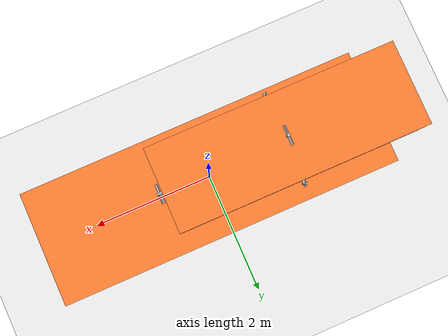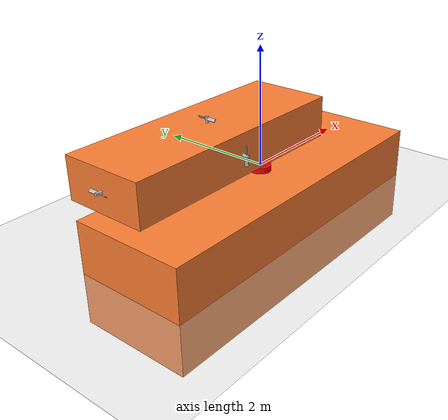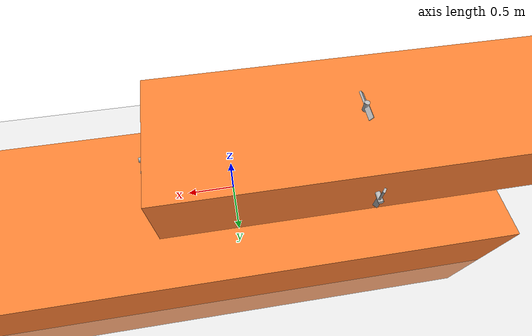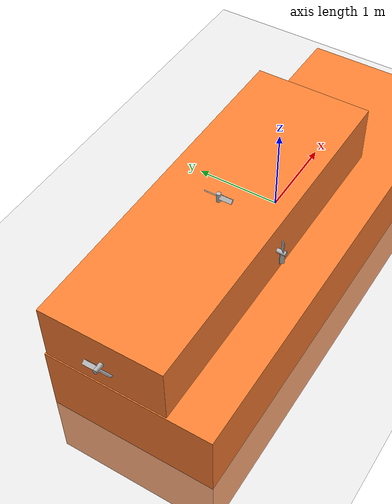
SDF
<?xml version="1.0" ?>
<sdf version="1.10">
  <world name="ROV_ENV_01">
    <physics name="1ms" type="dart">
      <max_step_size>0.001</max_step_size>
      <real_time_factor>0.2</real_time_factor>
    </physics>
    <gravity> 0 0 0</gravity>
    <plugin
      filename="gz-sim-physics-system"
      name="gz::sim::systems::Physics">
    </plugin>
    <plugin
      filename="gz-sim-scene-broadcaster-system"
      name="gz::sim::systems::SceneBroadcaster">
    </plugin>

    <plugin filename ="gz-sim-apply-link-wrench-system"
            name="gz::sim::systems::ApplyLinkWrench"/>

    <scene>
      <!-- For turquoise ambient -->
      <ambient>0.0 1.0 1.0</ambient>
      <background>0.0 0.7 0.8</background>
    </scene>

    <light type="directional" name="sun">
      <cast_shadows>true</cast_shadows>
      <pose>0 0 10 0 0 0</pose>
      <diffuse>0.8 0.8 0.8 1</diffuse>
      <specular>0.2 0.2 0.2 1</specular>
      <attenuation>
        <range>1000</range>
        <constant>0.9</constant>
        <linear>0.01</linear>
        <quadratic>0.001</quadratic>
      </attenuation>
      <direction>0.5 0.1 -0.9</direction>
    </light>

    <model name="ground_plane">
      <pose relative_to="world">0 0 -1 0 0 0</pose>
      <static>true</static>
      <link name="link">
        <pose>0 0 0 0 0 0</pose>
        <collision name="collision">
          <pose relative_to="__model__">0 0 0 0 0 0</pose>
        <geometry>
          <plane>
          <normal>0 0 1</normal>
          </plane>
        </geometry>
        </collision>
        <visual name="visual">
        <pose relative_to="__model__">0 0 0 0 0 0</pose>
        <geometry>
          <plane>
          <normal>0 0 1</normal>
          <size>1000 1000</size>
          </plane>
        </geometry>
        <material>
          <ambient>0.8 0.8 0.8 1</ambient>
          <diffuse>0.8 0.8 0.8 1</diffuse>
          <specular>0.8 0.8 0.8 1</specular>
        </material>
        </visual>
      </link>
    </model>

    <model name="ROV" canonical_link="chassis">
      <plugin filename ="gz-sim-apply-link-wrench-system"
            name="gz::sim::systems::ApplyLinkWrench"/>
      <plugin name="gz::sim::systems::OdometryPublisher"
                filename="gz-sim-odometry-publisher-system">
                <robot_base_frame>rov_charging_cylinder</robot_base_frame>
                <odom_topic>/rov/odometry</odom_topic>
                <dimensions>3</dimensions>
                <xyz_offset>1 0 -0.67 0 0 0</xyz_offset>
      </plugin>
      <pose relative_to="world">-1.25 0 0.78 0 0 0</pose> <!--Desired x -1, desired z + 0.67-->
      <link name="chassis">

        <pose relative_to="__model__">0 0 0 0 0 0</pose>
        <inertial>
          <mass>1400</mass>
          <inertia>
            <ixx>265.00</ixx>
            <ixy>0</ixy>
            <ixz>0</ixz>
            <iyy>1919.04</iyy>
            <iyz>0</iyz>
            <izz>2079.29</izz>
          </inertia>

          <fluid_added_mass>
            <xx>700</xx>
            <yy>2268</yy>
            <zz>6258</zz>
          </fluid_added_mass>
        </inertial>
        <visual name="visual">
          <geometry>
            <box>
              <size>4 1.35 0.67</size>
            </box>
          </geometry>

          <material>

            <ambient>1.0 0.5 0.2 1.0</ambient>
            <diffuse>1.0 0.5 0.2 1.0</diffuse>
            <specular>0.5 0.3 0.1 1.0</specular>

          </material>
        </visual>
          <collision name="collision">
            <geometry>
              <box>
                <size>4 1.35 0.67</size>
              </box>
            </geometry>
          </collision>
      </link>

      <link name="rov_charging_cylinder">
          <pose relative_to="__model__">1 0 -0.335 0 0 0</pose>

          <!--ODOMETRY PUBLISHER, sending to magnetic data node-->

        <collision name="collision">
          <geometry>
            <cylinder>
              <radius>0.155</radius>
              <length>0.67</length>
            </cylinder>
          </geometry>
        </collision>
        <visual name="visual">
        <geometry>
          <cylinder>
            <radius>0.155</radius>
            <length>0.67</length>
          </cylinder>
        </geometry>
        <material>
            <ambient>0 0 0.5 1</ambient>
            <diffuse>0 0 0.5 1</diffuse>
            <specular>0.2 0.2 0.5 1</specular>
            <emissive>0 0 0.2 1</emissive>
        </material>
        </visual>
        </link>
        <joint name="rov_charging_cylinder_joint" type="fixed">
         <pose relative_to="chassis"/>
              <parent>chassis</parent>
              <child>rov_charging_cylinder</child>
      </joint>

     <plugin filename="gz-sim-hydrodynamics-system"
            name="gz::sim::systems::Hydrodynamics">
            <link_name>chassis</link_name>
            <water_density>1000.0</water_density>
            <!--Added mass in surge-->
            <!--Added mass in sway-->
            <!--Added mass in heave-->
            <!--Added mass in roll-->
            <!--Added mass in pitch-->
            <!--Added mass in yaw-->
            <xUabsU>-1</xUabsU> <!--Quadratic drag in surge-->
            <xU>-20</xU> <!--Linear drag in surge-->
            <yVabsV>-1</yVabsV> <!--Quadratic drag in sway-->
            <yV>-2500</yV> <!--Linear drag in sway-->
            <zWabsW>-1</zWabsW> <!--Quadratic drag in heave-->
            <zW>-3000</zW> <!--Linear drag in heave-->
            <kPabsP>-1</kPabsP> <!--Quadratic drag in roll-->
            <kP>-400</kP> <!--Linear drag in roll-->
            <mQabsQ>-1</mQabsQ> <!--Quadratic drag in pitch-->
            <mQ>-600</mQ> <!--Linear drag in pitch-->
            <nRabsR>-1</nRabsR> <!--Quadratic drag in yaw-->
            <nR>-1500</nR> <!--Linear drag in yaw-->
            <default_current>0 0 0</default_current>
      </plugin>

        <link name="stern_thruster_cylinder">
            <pose relative_to="chassis">-2 0 0 0 1.5707 0</pose>

            <visual name="visual">

              <geometry>
                <cylinder>
                  <radius>0.025</radius>
                  <length>0.2</length>
                </cylinder>
              </geometry>
            </visual>

            <collision name="collision">

              <geometry>
                <cylinder>
                  <radius>0.025</radius>
                  <length>0.2</length>
                </cylinder>
              </geometry>
            </collision>
            </link>

            <joint name="stern_thruster_cylinder_joint" type="revolute">
              <pose relative_to="stern_thruster_cylinder"/>
              <parent>chassis</parent>
              <child>stern_thruster_cylinder</child>
              <axis>
                <xyz expressed_in="__model__">1 0 0</xyz>
                <limit>
                  <lower>-1.79769e+308</lower>
                  <upper>1.79769e+308</upper>
                </limit>
              </axis>
            </joint>

            <joint name="stern_thruster_cylinder_blade1_joint" type="fixed">
              <pose relative_to="stern_thruster_blade_1"/>
              <parent>stern_thruster_cylinder</parent>
              <child>stern_thruster_blade_1</child>
            </joint>

            <joint name="stern_thruster_cylinder_blade2_joint" type="fixed">
              <pose relative_to="stern_thruster_blade_2"/>
              <parent>stern_thruster_cylinder</parent>
              <child>stern_thruster_blade_2</child>
            </joint>

          <link name="stern_thruster_blade_1">
            <pose relative_to="stern_thruster_cylinder">0 -0.08 -0.06 0 0.7 0</pose>

            <visual name="visual">

              <geometry>
                <box>
                  <size>0.01 0.15 0.05</size>
                </box>
              </geometry>
            </visual>

            <collision name="collision">
              <geometry>
                <box>
                  <size>0.01 0.15 0.05</size>
                </box>
              </geometry>
            </collision>

          </link>

          <link name="stern_thruster_blade_2">
            <pose relative_to="stern_thruster_cylinder">0 0.08 -0.06 0 -0.7 0</pose>

            <visual name="visual">

              <geometry>
                <box>
                  <size>0.02 0.15 0.05</size>
                </box>
              </geometry>
            </visual>

            <collision name="collision">
              <geometry>
                <box>
                  <size>0.02 0.15 0.05</size>
                </box>
              </geometry>
            </collision>

          </link>
          <plugin name="gz::sim::systems::Thruster"
                    filename="gz-sim-thruster-system">
                    <namespace>rov_cmd</namespace>
                    <topic>stern_thrust</topic>
                    <joint_name>stern_thruster_cylinder_joint</joint_name>
                    <use_angvel_cmd>0</use_angvel_cmd>
                    <fluid_density>1000</fluid_density>
                    <propeller_diameter>0.10</propeller_diameter>
                    <thrust_coefficient>0.8</thrust_coefficient>
                    <velocity_control>0</velocity_control> <!--if true, use joint velocity commands to rotate the propeller. If false, use a PID controller to apply wrenches directly to the propeller link instead. [Optional, defaults to false].-->
                    <p_gain>0.5</p_gain>
                    <i_gain>0</i_gain>
                    <d_gain>0</d_gain>
                    <max_thrust_cmd>1000</max_thrust_cmd>
                    <min_thrust_cmd>-1000</min_thrust_cmd>
                    <deadband>0</deadband>
                    <wake_fraction>0.2</wake_fraction>
                    <alpha_1>1</alpha_1>
                    <alpha_2>0</alpha_2>
        </plugin>

        <link name="starboard_thruster_cylinder">
            <pose relative_to="chassis">0 -0.675 0 -1.5707 0 0</pose>

            <visual name="visual">

              <geometry>
                <cylinder>
                  <radius>0.025</radius>
                  <length>0.2</length>
                </cylinder>
              </geometry>
            </visual>

            <collision name="collision">

              <geometry>
                <cylinder>
                  <radius>0.025</radius>
                  <length>0.2</length>
                </cylinder>
              </geometry>
            </collision>
            </link>

            <joint name="starboard_thruster_cylinder_joint" type="revolute">
              <pose relative_to="starboard_thruster_cylinder"/>
              <parent>chassis</parent>
              <child>starboard_thruster_cylinder</child>
              <axis>
                <xyz expressed_in="__model__">0 1 0</xyz>
                <limit>
                  <lower>-1.79769e+308</lower>
                  <upper>1.79769e+308</upper>
                </limit>
              </axis>
            </joint>

            <joint name="starboard_thruster_cylinder_blade1_joint" type="fixed">
              <pose relative_to="starboard_thruster_blade_1"/>
              <parent>starboard_thruster_cylinder</parent>
              <child>starboard_thruster_blade_1</child>
            </joint>

            <joint name="starboard_thruster_cylinder_blade2_joint" type="fixed">
              <pose relative_to="starboard_thruster_blade_2"/>
              <parent>starboard_thruster_cylinder</parent>
              <child>starboard_thruster_blade_2</child>
            </joint>

          <link name="starboard_thruster_blade_1">
            <pose relative_to="starboard_thruster_cylinder">0 -0.08 -0.06 0 0.7 0</pose>

            <visual name="visual">

              <geometry>
                <box>
                  <size>0.01 0.15 0.05</size>
                </box>
              </geometry>
            </visual>

            <collision name="collision">
              <geometry>
                <box>
                  <size>0.01 0.15 0.05</size>
                </box>
              </geometry>
            </collision>

          </link>

          <link name="starboard_thruster_blade_2">
            <pose relative_to="starboard_thruster_cylinder">0 0.08 -0.06 0 -0.7 0</pose>

            <visual name="visual">

              <geometry>
                <box>
                  <size>0.02 0.15 0.05</size>
                </box>
              </geometry>
            </visual>

            <collision name="collision">
              <geometry>
                <box>
                  <size>0.02 0.15 0.05</size>
                </box>
              </geometry>
            </collision>

          </link>
          <plugin name="gz::sim::systems::Thruster"
                    filename="gz-sim-thruster-system">
                    <namespace>rov_cmd</namespace>
                    <topic>starboard_thrust</topic>
                    <joint_name>starboard_thruster_cylinder_joint</joint_name>
                    <use_angvel_cmd>0</use_angvel_cmd>
                    <fluid_density>1000</fluid_density>
                    <propeller_diameter>0.10</propeller_diameter>
                    <thrust_coefficient>0.8</thrust_coefficient>
                    <velocity_control>0</velocity_control> <!--if true, use joint velocity commands to rotate the propeller. If false, use a PID controller to apply wrenches directly to the propeller link instead. [Optional, defaults to false].-->
                    <p_gain>0.5</p_gain>
                    <i_gain>0</i_gain>
                    <d_gain>0</d_gain>
                    <max_thrust_cmd>1000</max_thrust_cmd>
                    <min_thrust_cmd>-1000</min_thrust_cmd>
                    <deadband>0</deadband>
                    <wake_fraction>0.2</wake_fraction>
                    <alpha_1>1</alpha_1>
                    <alpha_2>0</alpha_2>
        </plugin>

        <link name="port_thruster_cylinder">
            <pose relative_to="chassis">0 0.675 0 1.5707 0 0</pose>

            <visual name="visual">

              <geometry>
                <cylinder>
                  <radius>0.025</radius>
                  <length>0.2</length>
                </cylinder>
              </geometry>
            </visual>

            <collision name="collision">

              <geometry>
                <cylinder>
                  <radius>0.025</radius>
                  <length>0.2</length>
                </cylinder>
              </geometry>
            </collision>
            </link>

            <joint name="port_thruster_cylinder_joint" type="revolute">
              <pose relative_to="port_thruster_cylinder"/>
              <parent>chassis</parent>
              <child>port_thruster_cylinder</child>
              <axis>
                <xyz expressed_in="__model__">0 -1 0</xyz>
                <limit>
                  <lower>-1.79769e+308</lower>
                  <upper>1.79769e+308</upper>
                </limit>
              </axis>
            </joint>

            <joint name="port_thruster_cylinder_blade1_joint" type="fixed">
              <pose relative_to="port_thruster_blade_1"/>
              <parent>port_thruster_cylinder</parent>
              <child>port_thruster_blade_1</child>
            </joint>

            <joint name="port_thruster_cylinder_blade2_joint" type="fixed">
              <pose relative_to="port_thruster_blade_2"/>
              <parent>port_thruster_cylinder</parent>
              <child>port_thruster_blade_2</child>
            </joint>

          <link name="port_thruster_blade_1">
            <pose relative_to="port_thruster_cylinder">0 -0.08 -0.06 0 0.7 0</pose>

            <visual name="visual">

              <geometry>
                <box>
                  <size>0.01 0.15 0.05</size>
                </box>
              </geometry>
            </visual>

            <collision name="collision">
              <geometry>
                <box>
                  <size>0.01 0.15 0.05</size>
                </box>
              </geometry>
            </collision>

          </link>

          <link name="port_thruster_blade_2">
            <pose relative_to="port_thruster_cylinder">0 0.08 -0.06 0 -0.7 0</pose>

            <visual name="visual">

              <geometry>
                <box>
                  <size>0.02 0.15 0.05</size>
                </box>
              </geometry>
            </visual>

            <collision name="collision">
              <geometry>
                <box>
                  <size>0.02 0.15 0.05</size>
                </box>
              </geometry>
            </collision>

          </link>
          <plugin name="gz::sim::systems::Thruster"
                    filename="gz-sim-thruster-system">
                    <namespace>rov_cmd</namespace>
                    <topic>port_thrust</topic>
                    <joint_name>port_thruster_cylinder_joint</joint_name>
                    <use_angvel_cmd>0</use_angvel_cmd>
                    <fluid_density>1000</fluid_density>
                    <propeller_diameter>0.10</propeller_diameter>
                    <thrust_coefficient>0.8</thrust_coefficient>
                    <velocity_control>0</velocity_control> <!--if true, use joint velocity commands to rotate the propeller. If false, use a PID controller to apply wrenches directly to the propeller link instead. [Optional, defaults to false].-->
                    <p_gain>0.5</p_gain>
                    <i_gain>0</i_gain>
                    <d_gain>0</d_gain>
                    <max_thrust_cmd>1000</max_thrust_cmd>
                    <min_thrust_cmd>-1000</min_thrust_cmd>
                    <deadband>0</deadband>
                    <wake_fraction>0.2</wake_fraction>
                    <alpha_1>1</alpha_1>
                    <alpha_2>0</alpha_2>
        </plugin>

        <link name="bow_thruster_cylinder">
            <pose relative_to="chassis">2 0 0 0 -1.5707 0</pose>

            <visual name="visual">

              <geometry>
                <cylinder>
                  <radius>0.025</radius>
                  <length>0.2</length>
                </cylinder>
              </geometry>
            </visual>

            <collision name="collision">

              <geometry>
                <cylinder>
                  <radius>0.025</radius>
                  <length>0.2</length>
                </cylinder>
              </geometry>
            </collision>
            </link>

            <joint name="bow_thruster_cylinder_joint" type="revolute">
              <pose relative_to="bow_thruster_cylinder"/>
              <parent>chassis</parent>
              <child>bow_thruster_cylinder</child>
              <axis>
                <xyz expressed_in="__model__">-1 0 0</xyz>
                <limit>
                  <lower>-1.79769e+308</lower>
                  <upper>1.79769e+308</upper>
                </limit>
              </axis>
            </joint>

            <joint name="bow_thruster_cylinder_blade1_joint" type="fixed">
              <pose relative_to="bow_thruster_blade_1"/>
              <parent>bow_thruster_cylinder</parent>
              <child>bow_thruster_blade_1</child>
            </joint>

            <joint name="bow_thruster_cylinder_blade2_joint" type="fixed">
              <pose relative_to="bow_thruster_blade_2"/>
              <parent>bow_thruster_cylinder</parent>
              <child>bow_thruster_blade_2</child>
            </joint>

          <link name="bow_thruster_blade_1">
            <pose relative_to="bow_thruster_cylinder">0 -0.08 -0.06 0 0.7 0</pose>

            <visual name="visual">

              <geometry>
                <box>
                  <size>0.01 0.15 0.05</size>
                </box>
              </geometry>
            </visual>

            <collision name="collision">
              <geometry>
                <box>
                  <size>0.01 0.15 0.05</size>
                </box>
              </geometry>
            </collision>

          </link>

          <link name="bow_thruster_blade_2">
            <pose relative_to="bow_thruster_cylinder">0 0.08 -0.06 0 -0.7 0</pose>

            <visual name="visual">

              <geometry>
                <box>
                  <size>0.02 0.15 0.05</size>
                </box>
              </geometry>
            </visual>

            <collision name="collision">
              <geometry>
                <box>
                  <size>0.02 0.15 0.05</size>
                </box>
              </geometry>
            </collision>

          </link>
          <plugin name="gz::sim::systems::Thruster"
                    filename="gz-sim-thruster-system">
                    <namespace>rov_cmd</namespace>
                    <topic>bow_thrust</topic>
                    <joint_name>bow_thruster_cylinder_joint</joint_name>
                    <use_angvel_cmd>0</use_angvel_cmd>
                    <fluid_density>1000</fluid_density>
                    <propeller_diameter>0.10</propeller_diameter>
                    <thrust_coefficient>0.8</thrust_coefficient>
                    <velocity_control>0</velocity_control> <!--if true, use joint velocity commands to rotate the propeller. If false, use a PID controller to apply wrenches directly to the propeller link instead. [Optional, defaults to false].-->
                    <p_gain>0.5</p_gain>
                    <i_gain>0</i_gain>
                    <d_gain>0</d_gain>
                    <max_thrust_cmd>1000</max_thrust_cmd>
                    <min_thrust_cmd>-1000</min_thrust_cmd>
                    <deadband>0</deadband>
                    <wake_fraction>0.2</wake_fraction>
                    <alpha_1>1</alpha_1>
                    <alpha_2>0</alpha_2>
        </plugin>

        <link name="top_thruster_cylinder">
            <pose relative_to="chassis">0 0 0.335 3.141592 0 0</pose>

            <visual name="visual">

              <geometry>
                <cylinder>
                  <radius>0.025</radius>
                  <length>0.2</length>
                </cylinder>
              </geometry>
            </visual>

            <collision name="collision">

              <geometry>
                <cylinder>
                  <radius>0.025</radius>
                  <length>0.2</length>
                </cylinder>
              </geometry>
            </collision>
            </link>

            <joint name="top_thruster_cylinder_joint" type="revolute">
              <pose relative_to="top_thruster_cylinder"/>
              <parent>chassis</parent>
              <child>top_thruster_cylinder</child>
              <axis>
                <xyz expressed_in="__model__">0 0 -1</xyz>
                <limit>
                  <lower>-1.79769e+308</lower>
                  <upper>1.79769e+308</upper>
                </limit>
              </axis>
            </joint>

            <joint name="top_thruster_cylinder_blade1_joint" type="fixed">
              <pose relative_to="top_thruster_blade_1"/>
              <parent>top_thruster_cylinder</parent>
              <child>top_thruster_blade_1</child>
            </joint>

            <joint name="top_thruster_cylinder_blade2_joint" type="fixed">
              <pose relative_to="top_thruster_blade_2"/>
              <parent>top_thruster_cylinder</parent>
              <child>top_thruster_blade_2</child>
            </joint>

          <link name="top_thruster_blade_1">
            <pose relative_to="top_thruster_cylinder">0 -0.08 -0.06 0 0.7 0</pose>

            <visual name="visual">

              <geometry>
                <box>
                  <size>0.01 0.15 0.05</size>
                </box>
              </geometry>
            </visual>

            <collision name="collision">
              <geometry>
                <box>
                  <size>0.01 0.15 0.05</size>
                </box>
              </geometry>
            </collision>

          </link>

          <link name="top_thruster_blade_2">
            <pose relative_to="top_thruster_cylinder">0 0.08 -0.06 0 -0.7 0</pose>

            <visual name="visual">

              <geometry>
                <box>
                  <size>0.02 0.15 0.05</size>
                </box>
              </geometry>
            </visual>

            <collision name="collision">
              <geometry>
                <box>
                  <size>0.02 0.15 0.05</size>
                </box>
              </geometry>
            </collision>

          </link>
          <plugin name="gz::sim::systems::Thruster"
                    filename="gz-sim-thruster-system">
                    <namespace>rov_cmd</namespace>
                    <topic>top_thrust</topic>
                    <joint_name>top_thruster_cylinder_joint</joint_name>
                    <use_angvel_cmd>0</use_angvel_cmd>
                    <fluid_density>1000</fluid_density>
                    <propeller_diameter>0.10</propeller_diameter>
                    <thrust_coefficient>0.8</thrust_coefficient>
                    <velocity_control>0</velocity_control> <!--if true, use joint velocity commands to rotate the propeller. If false, use a PID controller to apply wrenches directly to the propeller link instead. [Optional, defaults to false].-->
                    <p_gain>0.5</p_gain>
                    <i_gain>0</i_gain>
                    <d_gain>0</d_gain>
                    <max_thrust_cmd>1000</max_thrust_cmd>
                    <min_thrust_cmd>-1000</min_thrust_cmd>
                    <deadband>0</deadband>
                    <wake_fraction>0.2</wake_fraction>
                    <alpha_1>1</alpha_1>
                    <alpha_2>0</alpha_2>
        </plugin>

        <link name="bottom_thruster_cylinder">
            <pose relative_to="chassis">0 0 -0.335 0 0 0</pose>

            <visual name="visual">

              <geometry>
                <cylinder>
                  <radius>0.025</radius>
                  <length>0.2</length>
                </cylinder>
              </geometry>
            </visual>

            <collision name="collision">

              <geometry>
                <cylinder>
                  <radius>0.025</radius>
                  <length>0.2</length>
                </cylinder>
              </geometry>
            </collision>
            </link>

            <joint name="bottom_thruster_cylinder_joint" type="revolute">
              <pose relative_to="bottom_thruster_cylinder"/>
              <parent>chassis</parent>
              <child>bottom_thruster_cylinder</child>
              <axis>
                <xyz expressed_in="__model__">0 0 1</xyz>
                <limit>
                  <lower>-1.79769e+308</lower>
                  <upper>1.79769e+308</upper>
                </limit>
              </axis>
            </joint>

            <joint name="bottom_thruster_cylinder_blade1_joint" type="fixed">
              <pose relative_to="bottom_thruster_blade_1"/>
              <parent>bottom_thruster_cylinder</parent>
              <child>bottom_thruster_blade_1</child>
            </joint>

            <joint name="bottom_thruster_cylinder_blade2_joint" type="fixed">
              <pose relative_to="bottom_thruster_blade_2"/>
              <parent>bottom_thruster_cylinder</parent>
              <child>bottom_thruster_blade_2</child>
            </joint>

          <link name="bottom_thruster_blade_1">
            <pose relative_to="bottom_thruster_cylinder">0 -0.08 -0.06 0 0.7 0</pose>

            <visual name="visual">

              <geometry>
                <box>
                  <size>0.01 0.15 0.05</size>
                </box>
              </geometry>
            </visual>

            <collision name="collision">
              <geometry>
                <box>
                  <size>0.01 0.15 0.05</size>
                </box>
              </geometry>
            </collision>

          </link>

          <link name="bottom_thruster_blade_2">
            <pose relative_to="bottom_thruster_cylinder">0 0.08 -0.06 0 -0.7 0</pose>

            <visual name="visual">

              <geometry>
                <box>
                  <size>0.02 0.15 0.05</size>
                </box>
              </geometry>
            </visual>

            <collision name="collision">
              <geometry>
                <box>
                  <size>0.02 0.15 0.05</size>
                </box>
              </geometry>
            </collision>

          </link>
          <plugin name="gz::sim::systems::Thruster"
                    filename="gz-sim-thruster-system">
                    <namespace>rov_cmd</namespace>
                    <topic>bottom_thrust</topic>
                    <joint_name>bottom_thruster_cylinder_joint</joint_name>
                    <use_angvel_cmd>0</use_angvel_cmd>
                    <fluid_density>1000</fluid_density>
                    <propeller_diameter>0.10</propeller_diameter>
                    <thrust_coefficient>0.8</thrust_coefficient>
                    <velocity_control>0</velocity_control> <!--if true, use joint velocity commands to rotate the propeller. If false, use a PID controller to apply wrenches directly to the propeller link instead. [Optional, defaults to false].-->
                    <p_gain>0.5</p_gain>
                    <i_gain>0</i_gain>
                    <d_gain>0</d_gain>
                    <max_thrust_cmd>1000</max_thrust_cmd>
                    <min_thrust_cmd>-1000</min_thrust_cmd>
                    <deadband>0</deadband>
                    <wake_fraction>0.2</wake_fraction>
                    <alpha_1>1</alpha_1>
                    <alpha_2>0</alpha_2>
        </plugin>

    </model>

  <model name="docking_cylinder"
          canonical_link="cylinder_link">
        <pose relative_to="world">0 0 -1 0 0 0</pose>
        <static>true</static>
        <link name="cylinder_link">
        <pose relative_to="__model__">0 0 0 0 0 0</pose>
        <collision name="collision">
          <pose relative_to="__model__">0 0 0 0 0 0</pose>
          <geometry>
            <cylinder>
              <radius>0.18</radius>
              <length>2</length>
            </cylinder>
          </geometry>
        </collision>
        <visual name="visual">
        <pose relative_to="__model__">0 0 0 0 0 0</pose>
        <geometry>
          <cylinder>
            <radius>0.18</radius>
            <length>2</length>
          </cylinder>
        </geometry>
        <material>
            <ambient>1 0 0 1</ambient>
            <diffuse>1 0 0 1</diffuse>
            <specular>0.5 0.5 0.5 1</specular>
            <emissive>0.2 0 0 1</emissive>
        </material>
        </visual>
      </link>
  </model>

  <model name="docking_plate"
    canonical_link="docking_plate_link">
    <pose relative_to="world">0 0 -1 0 0 0</pose>
    <static>true</static>
    <link name="docking_plate_link">
      <pose relative_to="__model__">0 0 0 0 0 0</pose>
      <visual name="visual">
        <pose relative_to="__model__">0 0 0 0 0 0</pose>
        <geometry>
          <box>
            <size>6 2 1.8</size>
          </box>
        </geometry>
        <material>
          <ambient>1.0 0.5 0.2 1.0</ambient>
          <diffuse>1.0 0.5 0.2 1.0</diffuse>
          <specular>0.5 0.3 0.1 1.0</specular>
        </material>
      </visual>
    </link>
  </model>

  </world>
</sdf>
